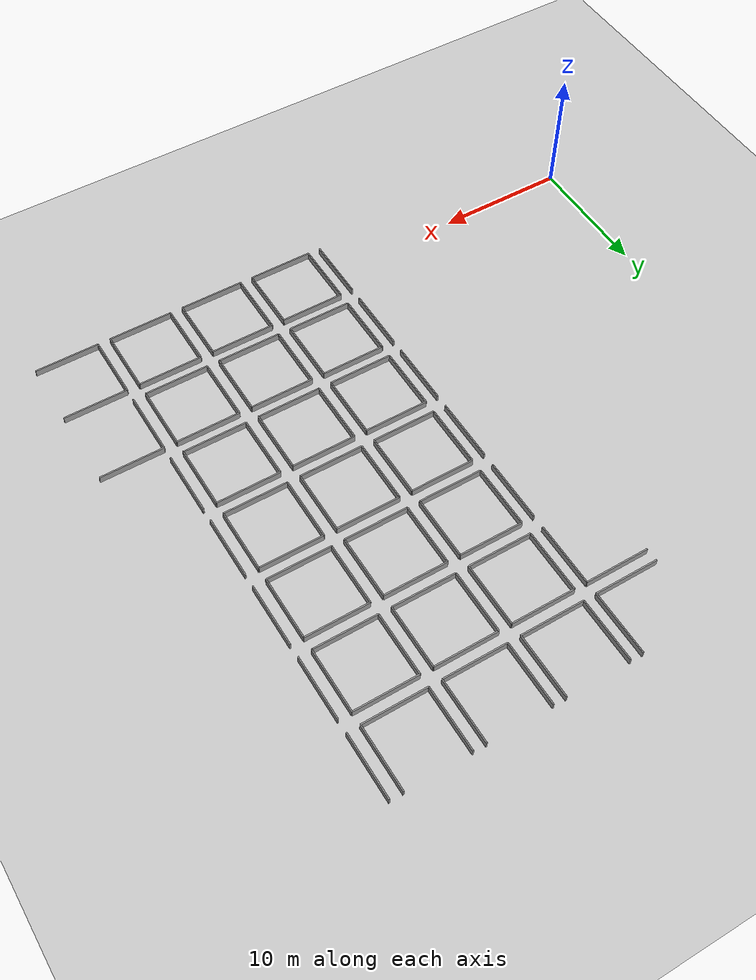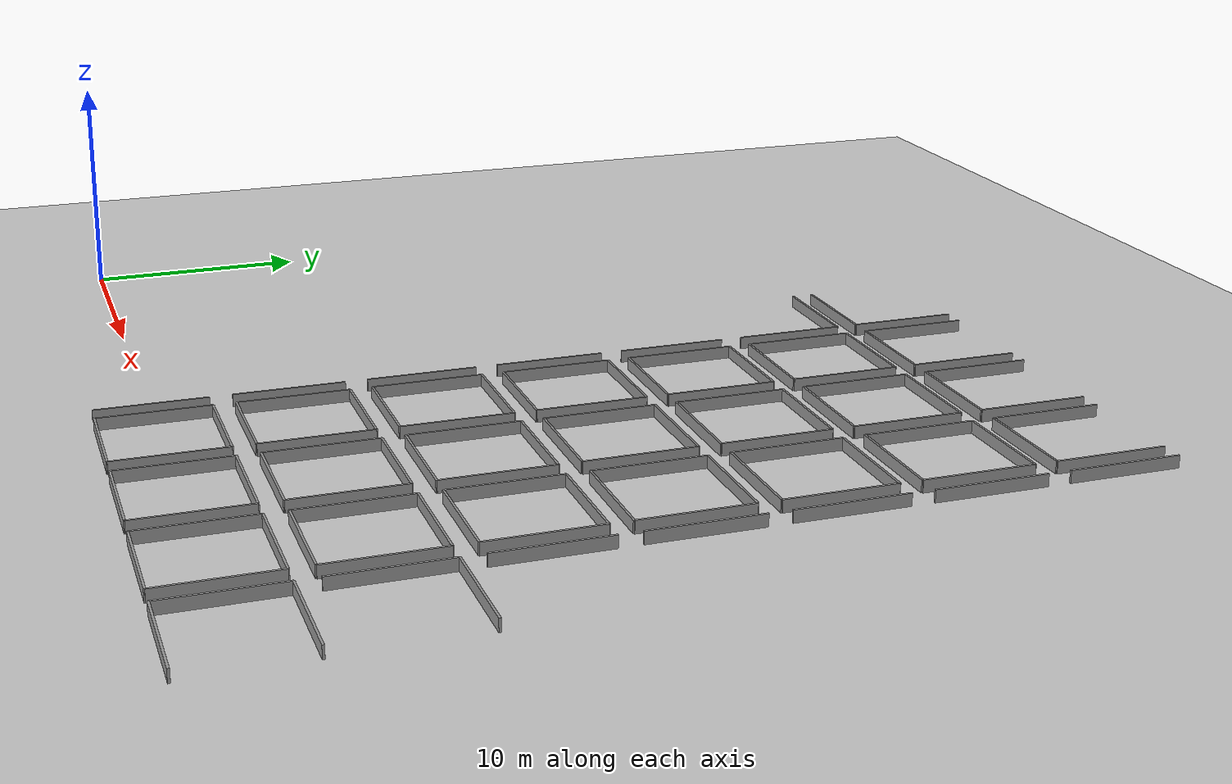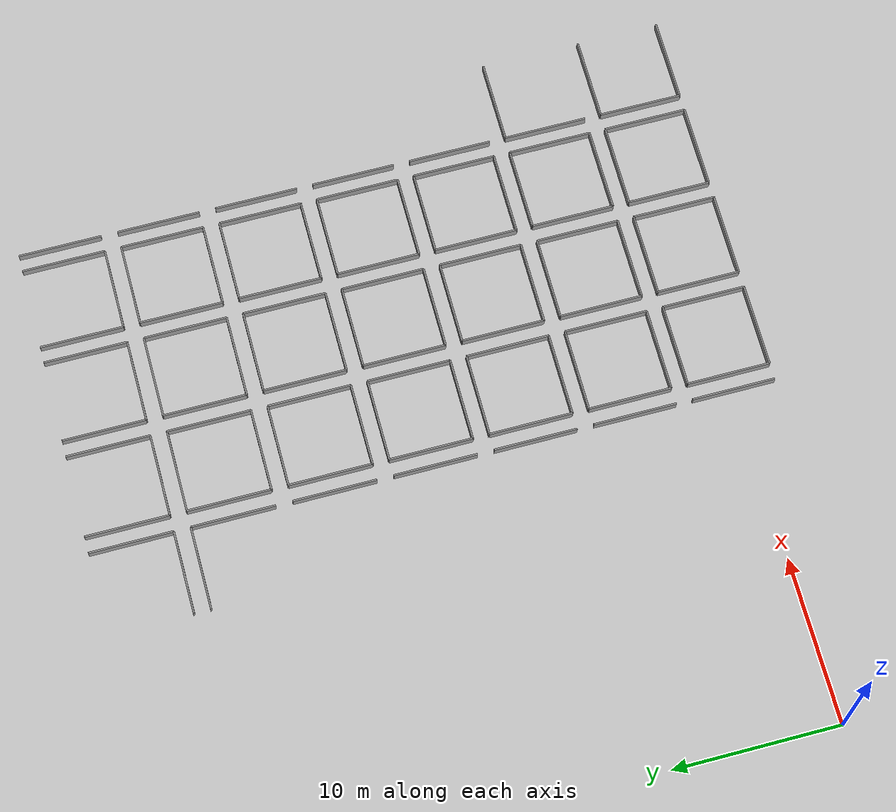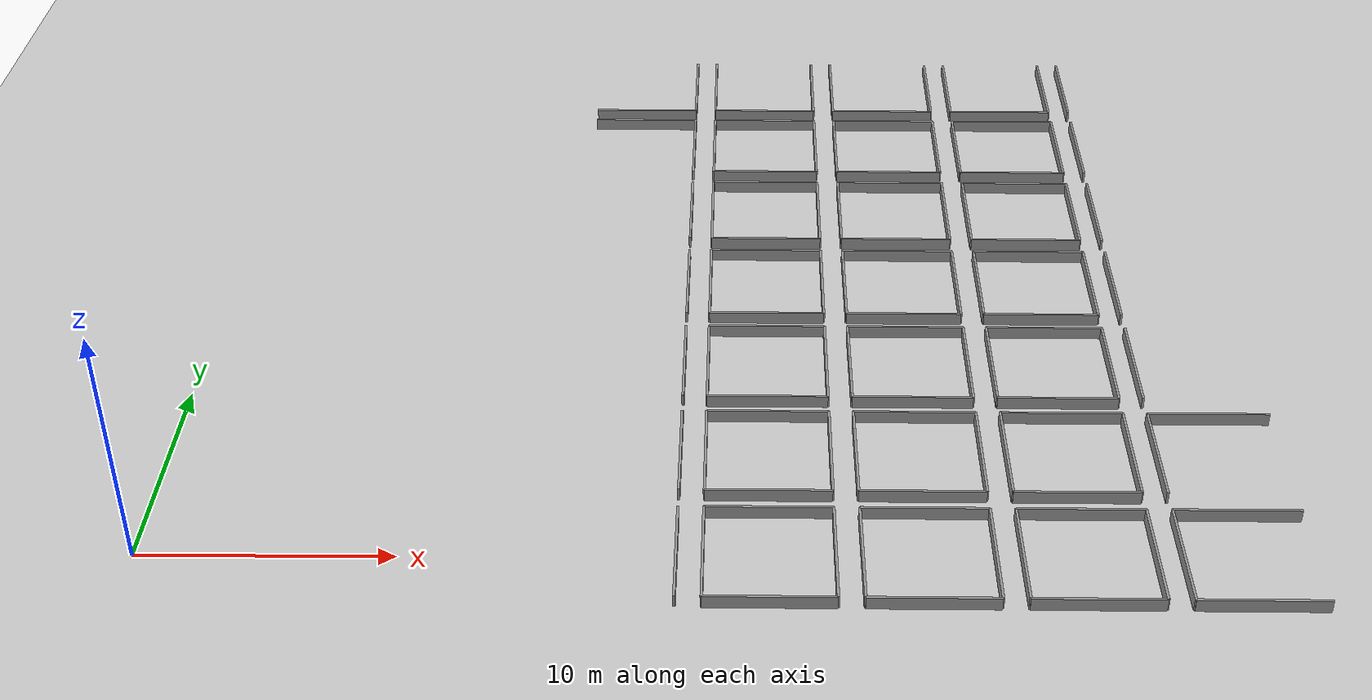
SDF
<sdf version="1.7">
 <world name="default">
  <include><uri>model://sun</uri></include>
  <model name="ground_plane">
   <static>true</static>
   <link name="link">
    <collision name="collision">
     <geometry><plane><normal>0 0 1</normal><size>100 100</size></plane></geometry>
    </collision>
    <visual name="visual">
     <geometry><plane><normal>0 0 1</normal><size>100 100</size></plane></geometry>
     <material>
      <script><uri>file://media/materials/scripts/gazebo.material</uri><name>Gazebo/Grey</name></script>
     </material>
    </visual>
   </link>
  </model>
  <model name="wall_3_east">
   <static>true</static>
   <pose>20.5 0 0 0 0 1.5707</pose>
   <link name="link">
    <collision name="collision"><geometry><box><size>5 0.1 1</size></box></geometry></collision>
    <visual name="visual">
     <geometry><box><size>5 0.1 1</size></box></geometry>
     <material>
      <script><uri>file://media/materials/scripts/gazebo.material</uri><name>Gazebo/Grey</name></script>
     </material>
    </visual>
   </link>
  </model>
  <model name="wall_4_north">
   <static>true</static>
   <pose>24 2.5 0 0 0 0</pose>
   <link name="link">
    <collision name="collision"><geometry><box><size>5 0.1 1</size></box></geometry></collision>
    <visual name="visual">
     <geometry><box><size>5 0.1 1</size></box></geometry>
     <material>
      <script><uri>file://media/materials/scripts/gazebo.material</uri><name>Gazebo/Grey</name></script>
     </material>
    </visual>
   </link>
  </model>
  <model name="wall_4_south">
   <static>true</static>
   <pose>24 -2.5 0 0 0 0</pose>
   <link name="link">
    <collision name="collision"><geometry><box><size>5 0.1 1</size></box></geometry></collision>
    <visual name="visual">
     <geometry><box><size>5 0.1 1</size></box></geometry>
     <material>
      <script><uri>file://media/materials/scripts/gazebo.material</uri><name>Gazebo/Grey</name></script>
     </material>
    </visual>
   </link>
  </model>
  <model name="wall_4_east">
   <static>true</static>
   <pose>26.5 0 0 0 0 1.5707</pose>
   <link name="link">
    <collision name="collision"><geometry><box><size>5 0.1 1</size></box></geometry></collision>
    <visual name="visual">
     <geometry><box><size>5 0.1 1</size></box></geometry>
     <material>
      <script><uri>file://media/materials/scripts/gazebo.material</uri><name>Gazebo/Grey</name></script>
     </material>
    </visual>
   </link>
  </model>
  <model name="wall_4_west">
   <static>true</static>
   <pose>21.5 0 0 0 0 1.5707</pose>
   <link name="link">
    <collision name="collision"><geometry><box><size>5 0.1 1</size></box></geometry></collision>
    <visual name="visual">
     <geometry><box><size>5 0.1 1</size></box></geometry>
     <material>
      <script><uri>file://media/materials/scripts/gazebo.material</uri><name>Gazebo/Grey</name></script>
     </material>
    </visual>
   </link>
  </model>
  <model name="wall_5_north">
   <static>true</static>
   <pose>30 2.5 0 0 0 0</pose>
   <link name="link">
    <collision name="collision"><geometry><box><size>5 0.1 1</size></box></geometry></collision>
    <visual name="visual">
     <geometry><box><size>5 0.1 1</size></box></geometry>
     <material>
      <script><uri>file://media/materials/scripts/gazebo.material</uri><name>Gazebo/Grey</name></script>
     </material>
    </visual>
   </link>
  </model>
  <model name="wall_5_south">
   <static>true</static>
   <pose>30 -2.5 0 0 0 0</pose>
   <link name="link">
    <collision name="collision"><geometry><box><size>5 0.1 1</size></box></geometry></collision>
    <visual name="visual">
     <geometry><box><size>5 0.1 1</size></box></geometry>
     <material>
      <script><uri>file://media/materials/scripts/gazebo.material</uri><name>Gazebo/Grey</name></script>
     </material>
    </visual>
   </link>
  </model>
  <model name="wall_5_east">
   <static>true</static>
   <pose>32.5 0 0 0 0 1.5707</pose>
   <link name="link">
    <collision name="collision"><geometry><box><size>5 0.1 1</size></box></geometry></collision>
    <visual name="visual">
     <geometry><box><size>5 0.1 1</size></box></geometry>
     <material>
      <script><uri>file://media/materials/scripts/gazebo.material</uri><name>Gazebo/Grey</name></script>
     </material>
    </visual>
   </link>
  </model>
  <model name="wall_5_west">
   <static>true</static>
   <pose>27.5 0 0 0 0 1.5707</pose>
   <link name="link">
    <collision name="collision"><geometry><box><size>5 0.1 1</size></box></geometry></collision>
    <visual name="visual">
     <geometry><box><size>5 0.1 1</size></box></geometry>
     <material>
      <script><uri>file://media/materials/scripts/gazebo.material</uri><name>Gazebo/Grey</name></script>
     </material>
    </visual>
   </link>
  </model>
  <model name="wall_6_north">
   <static>true</static>
   <pose>36 2.5 0 0 0 0</pose>
   <link name="link">
    <collision name="collision"><geometry><box><size>5 0.1 1</size></box></geometry></collision>
    <visual name="visual">
     <geometry><box><size>5 0.1 1</size></box></geometry>
     <material>
      <script><uri>file://media/materials/scripts/gazebo.material</uri><name>Gazebo/Grey</name></script>
     </material>
    </visual>
   </link>
  </model>
  <model name="wall_6_south">
   <static>true</static>
   <pose>36 -2.5 0 0 0 0</pose>
   <link name="link">
    <collision name="collision"><geometry><box><size>5 0.1 1</size></box></geometry></collision>
    <visual name="visual">
     <geometry><box><size>5 0.1 1</size></box></geometry>
     <material>
      <script><uri>file://media/materials/scripts/gazebo.material</uri><name>Gazebo/Grey</name></script>
     </material>
    </visual>
   </link>
  </model>
  <model name="wall_6_east">
   <static>true</static>
   <pose>38.5 0 0 0 0 1.5707</pose>
   <link name="link">
    <collision name="collision"><geometry><box><size>5 0.1 1</size></box></geometry></collision>
    <visual name="visual">
     <geometry><box><size>5 0.1 1</size></box></geometry>
     <material>
      <script><uri>file://media/materials/scripts/gazebo.material</uri><name>Gazebo/Grey</name></script>
     </material>
    </visual>
   </link>
  </model>
  <model name="wall_6_west">
   <static>true</static>
   <pose>33.5 0 0 0 0 1.5707</pose>
   <link name="link">
    <collision name="collision"><geometry><box><size>5 0.1 1</size></box></geometry></collision>
    <visual name="visual">
     <geometry><box><size>5 0.1 1</size></box></geometry>
     <material>
      <script><uri>file://media/materials/scripts/gazebo.material</uri><name>Gazebo/Grey</name></script>
     </material>
    </visual>
   </link>
  </model>
  <model name="wall_7_north">
   <static>true</static>
   <pose>42 2.5 0 0 0 0</pose>
   <link name="link">
    <collision name="collision"><geometry><box><size>5 0.1 1</size></box></geometry></collision>
    <visual name="visual">
     <geometry><box><size>5 0.1 1</size></box></geometry>
     <material>
      <script><uri>file://media/materials/scripts/gazebo.material</uri><name>Gazebo/Grey</name></script>
     </material>
    </visual>
   </link>
  </model>
  <model name="wall_7_south">
   <static>true</static>
   <pose>42 -2.5 0 0 0 0</pose>
   <link name="link">
    <collision name="collision"><geometry><box><size>5 0.1 1</size></box></geometry></collision>
    <visual name="visual">
     <geometry><box><size>5 0.1 1</size></box></geometry>
     <material>
      <script><uri>file://media/materials/scripts/gazebo.material</uri><name>Gazebo/Grey</name></script>
     </material>
    </visual>
   </link>
  </model>
  <model name="wall_7_west">
   <static>true</static>
   <pose>39.5 0 0 0 0 1.5707</pose>
   <link name="link">
    <collision name="collision"><geometry><box><size>5 0.1 1</size></box></geometry></collision>
    <visual name="visual">
     <geometry><box><size>5 0.1 1</size></box></geometry>
     <material>
      <script><uri>file://media/materials/scripts/gazebo.material</uri><name>Gazebo/Grey</name></script>
     </material>
    </visual>
   </link>
  </model>
  <model name="wall_18_east">
   <static>true</static>
   <pose>20.5 6 0 0 0 1.5707</pose>
   <link name="link">
    <collision name="collision"><geometry><box><size>5 0.1 1</size></box></geometry></collision>
    <visual name="visual">
     <geometry><box><size>5 0.1 1</size></box></geometry>
     <material>
      <script><uri>file://media/materials/scripts/gazebo.material</uri><name>Gazebo/Grey</name></script>
     </material>
    </visual>
   </link>
  </model>
  <model name="wall_19_north">
   <static>true</static>
   <pose>24 8.5 0 0 0 0</pose>
   <link name="link">
    <collision name="collision"><geometry><box><size>5 0.1 1</size></box></geometry></collision>
    <visual name="visual">
     <geometry><box><size>5 0.1 1</size></box></geometry>
     <material>
      <script><uri>file://media/materials/scripts/gazebo.material</uri><name>Gazebo/Grey</name></script>
     </material>
    </visual>
   </link>
  </model>
  <model name="wall_19_south">
   <static>true</static>
   <pose>24 3.5 0 0 0 0</pose>
   <link name="link">
    <collision name="collision"><geometry><box><size>5 0.1 1</size></box></geometry></collision>
    <visual name="visual">
     <geometry><box><size>5 0.1 1</size></box></geometry>
     <material>
      <script><uri>file://media/materials/scripts/gazebo.material</uri><name>Gazebo/Grey</name></script>
     </material>
    </visual>
   </link>
  </model>
  <model name="wall_19_east">
   <static>true</static>
   <pose>26.5 6 0 0 0 1.5707</pose>
   <link name="link">
    <collision name="collision"><geometry><box><size>5 0.1 1</size></box></geometry></collision>
    <visual name="visual">
     <geometry><box><size>5 0.1 1</size></box></geometry>
     <material>
      <script><uri>file://media/materials/scripts/gazebo.material</uri><name>Gazebo/Grey</name></script>
     </material>
    </visual>
   </link>
  </model>
  <model name="wall_19_west">
   <static>true</static>
   <pose>21.5 6 0 0 0 1.5707</pose>
   <link name="link">
    <collision name="collision"><geometry><box><size>5 0.1 1</size></box></geometry></collision>
    <visual name="visual">
     <geometry><box><size>5 0.1 1</size></box></geometry>
     <material>
      <script><uri>file://media/materials/scripts/gazebo.material</uri><name>Gazebo/Grey</name></script>
     </material>
    </visual>
   </link>
  </model>
  <model name="wall_20_north">
   <static>true</static>
   <pose>30 8.5 0 0 0 0</pose>
   <link name="link">
    <collision name="collision"><geometry><box><size>5 0.1 1</size></box></geometry></collision>
    <visual name="visual">
     <geometry><box><size>5 0.1 1</size></box></geometry>
     <material>
      <script><uri>file://media/materials/scripts/gazebo.material</uri><name>Gazebo/Grey</name></script>
     </material>
    </visual>
   </link>
  </model>
  <model name="wall_20_south">
   <static>true</static>
   <pose>30 3.5 0 0 0 0</pose>
   <link name="link">
    <collision name="collision"><geometry><box><size>5 0.1 1</size></box></geometry></collision>
    <visual name="visual">
     <geometry><box><size>5 0.1 1</size></box></geometry>
     <material>
      <script><uri>file://media/materials/scripts/gazebo.material</uri><name>Gazebo/Grey</name></script>
     </material>
    </visual>
   </link>
  </model>
  <model name="wall_20_east">
   <static>true</static>
   <pose>32.5 6 0 0 0 1.5707</pose>
   <link name="link">
    <collision name="collision"><geometry><box><size>5 0.1 1</size></box></geometry></collision>
    <visual name="visual">
     <geometry><box><size>5 0.1 1</size></box></geometry>
     <material>
      <script><uri>file://media/materials/scripts/gazebo.material</uri><name>Gazebo/Grey</name></script>
     </material>
    </visual>
   </link>
  </model>
  <model name="wall_20_west">
   <static>true</static>
   <pose>27.5 6 0 0 0 1.5707</pose>
   <link name="link">
    <collision name="collision"><geometry><box><size>5 0.1 1</size></box></geometry></collision>
    <visual name="visual">
     <geometry><box><size>5 0.1 1</size></box></geometry>
     <material>
      <script><uri>file://media/materials/scripts/gazebo.material</uri><name>Gazebo/Grey</name></script>
     </material>
    </visual>
   </link>
  </model>
  <model name="wall_21_north">
   <static>true</static>
   <pose>36 8.5 0 0 0 0</pose>
   <link name="link">
    <collision name="collision"><geometry><box><size>5 0.1 1</size></box></geometry></collision>
    <visual name="visual">
     <geometry><box><size>5 0.1 1</size></box></geometry>
     <material>
      <script><uri>file://media/materials/scripts/gazebo.material</uri><name>Gazebo/Grey</name></script>
     </material>
    </visual>
   </link>
  </model>
  <model name="wall_21_south">
   <static>true</static>
   <pose>36 3.5 0 0 0 0</pose>
   <link name="link">
    <collision name="collision"><geometry><box><size>5 0.1 1</size></box></geometry></collision>
    <visual name="visual">
     <geometry><box><size>5 0.1 1</size></box></geometry>
     <material>
      <script><uri>file://media/materials/scripts/gazebo.material</uri><name>Gazebo/Grey</name></script>
     </material>
    </visual>
   </link>
  </model>
  <model name="wall_21_east">
   <static>true</static>
   <pose>38.5 6 0 0 0 1.5707</pose>
   <link name="link">
    <collision name="collision"><geometry><box><size>5 0.1 1</size></box></geometry></collision>
    <visual name="visual">
     <geometry><box><size>5 0.1 1</size></box></geometry>
     <material>
      <script><uri>file://media/materials/scripts/gazebo.material</uri><name>Gazebo/Grey</name></script>
     </material>
    </visual>
   </link>
  </model>
  <model name="wall_21_west">
   <static>true</static>
   <pose>33.5 6 0 0 0 1.5707</pose>
   <link name="link">
    <collision name="collision"><geometry><box><size>5 0.1 1</size></box></geometry></collision>
    <visual name="visual">
     <geometry><box><size>5 0.1 1</size></box></geometry>
     <material>
      <script><uri>file://media/materials/scripts/gazebo.material</uri><name>Gazebo/Grey</name></script>
     </material>
    </visual>
   </link>
  </model>
  <model name="wall_22_north">
   <static>true</static>
   <pose>42 8.5 0 0 0 0</pose>
   <link name="link">
    <collision name="collision"><geometry><box><size>5 0.1 1</size></box></geometry></collision>
    <visual name="visual">
     <geometry><box><size>5 0.1 1</size></box></geometry>
     <material>
      <script><uri>file://media/materials/scripts/gazebo.material</uri><name>Gazebo/Grey</name></script>
     </material>
    </visual>
   </link>
  </model>
  <model name="wall_22_west">
   <static>true</static>
   <pose>39.5 6 0 0 0 1.5707</pose>
   <link name="link">
    <collision name="collision"><geometry><box><size>5 0.1 1</size></box></geometry></collision>
    <visual name="visual">
     <geometry><box><size>5 0.1 1</size></box></geometry>
     <material>
      <script><uri>file://media/materials/scripts/gazebo.material</uri><name>Gazebo/Grey</name></script>
     </material>
    </visual>
   </link>
  </model>
  <model name="wall_33_east">
   <static>true</static>
   <pose>20.5 12 0 0 0 1.5707</pose>
   <link name="link">
    <collision name="collision"><geometry><box><size>5 0.1 1</size></box></geometry></collision>
    <visual name="visual">
     <geometry><box><size>5 0.1 1</size></box></geometry>
     <material>
      <script><uri>file://media/materials/scripts/gazebo.material</uri><name>Gazebo/Grey</name></script>
     </material>
    </visual>
   </link>
  </model>
  <model name="wall_34_north">
   <static>true</static>
   <pose>24 14.5 0 0 0 0</pose>
   <link name="link">
    <collision name="collision"><geometry><box><size>5 0.1 1</size></box></geometry></collision>
    <visual name="visual">
     <geometry><box><size>5 0.1 1</size></box></geometry>
     <material>
      <script><uri>file://media/materials/scripts/gazebo.material</uri><name>Gazebo/Grey</name></script>
     </material>
    </visual>
   </link>
  </model>
  <model name="wall_34_south">
   <static>true</static>
   <pose>24 9.5 0 0 0 0</pose>
   <link name="link">
    <collision name="collision"><geometry><box><size>5 0.1 1</size></box></geometry></collision>
    <visual name="visual">
     <geometry><box><size>5 0.1 1</size></box></geometry>
     <material>
      <script><uri>file://media/materials/scripts/gazebo.material</uri><name>Gazebo/Grey</name></script>
     </material>
    </visual>
   </link>
  </model>
  <model name="wall_34_east">
   <static>true</static>
   <pose>26.5 12 0 0 0 1.5707</pose>
   <link name="link">
    <collision name="collision"><geometry><box><size>5 0.1 1</size></box></geometry></collision>
    <visual name="visual">
     <geometry><box><size>5 0.1 1</size></box></geometry>
     <material>
      <script><uri>file://media/materials/scripts/gazebo.material</uri><name>Gazebo/Grey</name></script>
     </material>
    </visual>
   </link>
  </model>
  <model name="wall_34_west">
   <static>true</static>
   <pose>21.5 12 0 0 0 1.5707</pose>
   <link name="link">
    <collision name="collision"><geometry><box><size>5 0.1 1</size></box></geometry></collision>
    <visual name="visual">
     <geometry><box><size>5 0.1 1</size></box></geometry>
     <material>
      <script><uri>file://media/materials/scripts/gazebo.material</uri><name>Gazebo/Grey</name></script>
     </material>
    </visual>
   </link>
  </model>
  <model name="wall_35_north">
   <static>true</static>
   <pose>30 14.5 0 0 0 0</pose>
   <link name="link">
    <collision name="collision"><geometry><box><size>5 0.1 1</size></box></geometry></collision>
    <visual name="visual">
     <geometry><box><size>5 0.1 1</size></box></geometry>
     <material>
      <script><uri>file://media/materials/scripts/gazebo.material</uri><name>Gazebo/Grey</name></script>
     </material>
    </visual>
   </link>
  </model>
  <model name="wall_35_south">
   <static>true</static>
   <pose>30 9.5 0 0 0 0</pose>
   <link name="link">
    <collision name="collision"><geometry><box><size>5 0.1 1</size></box></geometry></collision>
    <visual name="visual">
     <geometry><box><size>5 0.1 1</size></box></geometry>
     <material>
      <script><uri>file://media/materials/scripts/gazebo.material</uri><name>Gazebo/Grey</name></script>
     </material>
    </visual>
   </link>
  </model>
  <model name="wall_35_east">
   <static>true</static>
   <pose>32.5 12 0 0 0 1.5707</pose>
   <link name="link">
    <collision name="collision"><geometry><box><size>5 0.1 1</size></box></geometry></collision>
    <visual name="visual">
     <geometry><box><size>5 0.1 1</size></box></geometry>
     <material>
      <script><uri>file://media/materials/scripts/gazebo.material</uri><name>Gazebo/Grey</name></script>
     </material>
    </visual>
   </link>
  </model>
  <model name="wall_35_west">
   <static>true</static>
   <pose>27.5 12 0 0 0 1.5707</pose>
   <link name="link">
    <collision name="collision"><geometry><box><size>5 0.1 1</size></box></geometry></collision>
    <visual name="visual">
     <geometry><box><size>5 0.1 1</size></box></geometry>
     <material>
      <script><uri>file://media/materials/scripts/gazebo.material</uri><name>Gazebo/Grey</name></script>
     </material>
    </visual>
   </link>
  </model>
  <model name="wall_36_north">
   <static>true</static>
   <pose>36 14.5 0 0 0 0</pose>
   <link name="link">
    <collision name="collision"><geometry><box><size>5 0.1 1</size></box></geometry></collision>
    <visual name="visual">
     <geometry><box><size>5 0.1 1</size></box></geometry>
     <material>
      <script><uri>file://media/materials/scripts/gazebo.material</uri><name>Gazebo/Grey</name></script>
     </material>
    </visual>
   </link>
  </model>
  <model name="wall_36_south">
   <static>true</static>
   <pose>36 9.5 0 0 0 0</pose>
   <link name="link">
    <collision name="collision"><geometry><box><size>5 0.1 1</size></box></geometry></collision>
    <visual name="visual">
     <geometry><box><size>5 0.1 1</size></box></geometry>
     <material>
      <script><uri>file://media/materials/scripts/gazebo.material</uri><name>Gazebo/Grey</name></script>
     </material>
    </visual>
   </link>
  </model>
  <model name="wall_36_east">
   <static>true</static>
   <pose>38.5 12 0 0 0 1.5707</pose>
   <link name="link">
    <collision name="collision"><geometry><box><size>5 0.1 1</size></box></geometry></collision>
    <visual name="visual">
     <geometry><box><size>5 0.1 1</size></box></geometry>
     <material>
      <script><uri>file://media/materials/scripts/gazebo.material</uri><name>Gazebo/Grey</name></script>
     </material>
    </visual>
   </link>
  </model>
  <model name="wall_36_west">
   <static>true</static>
   <pose>33.5 12 0 0 0 1.5707</pose>
   <link name="link">
    <collision name="collision"><geometry><box><size>5 0.1 1</size></box></geometry></collision>
    <visual name="visual">
     <geometry><box><size>5 0.1 1</size></box></geometry>
     <material>
      <script><uri>file://media/materials/scripts/gazebo.material</uri><name>Gazebo/Grey</name></script>
     </material>
    </visual>
   </link>
  </model>
  <model name="wall_37_west">
   <static>true</static>
   <pose>39.5 12 0 0 0 1.5707</pose>
   <link name="link">
    <collision name="collision"><geometry><box><size>5 0.1 1</size></box></geometry></collision>
    <visual name="visual">
     <geometry><box><size>5 0.1 1</size></box></geometry>
     <material>
      <script><uri>file://media/materials/scripts/gazebo.material</uri><name>Gazebo/Grey</name></script>
     </material>
    </visual>
   </link>
  </model>
  <model name="wall_48_east">
   <static>true</static>
   <pose>20.5 18 0 0 0 1.5707</pose>
   <link name="link">
    <collision name="collision"><geometry><box><size>5 0.1 1</size></box></geometry></collision>
    <visual name="visual">
     <geometry><box><size>5 0.1 1</size></box></geometry>
     <material>
      <script><uri>file://media/materials/scripts/gazebo.material</uri><name>Gazebo/Grey</name></script>
     </material>
    </visual>
   </link>
  </model>
  <model name="wall_49_north">
   <static>true</static>
   <pose>24 20.5 0 0 0 0</pose>
   <link name="link">
    <collision name="collision"><geometry><box><size>5 0.1 1</size></box></geometry></collision>
    <visual name="visual">
     <geometry><box><size>5 0.1 1</size></box></geometry>
     <material>
      <script><uri>file://media/materials/scripts/gazebo.material</uri><name>Gazebo/Grey</name></script>
     </material>
    </visual>
   </link>
  </model>
  <model name="wall_49_south">
   <static>true</static>
   <pose>24 15.5 0 0 0 0</pose>
   <link name="link">
    <collision name="collision"><geometry><box><size>5 0.1 1</size></box></geometry></collision>
    <visual name="visual">
     <geometry><box><size>5 0.1 1</size></box></geometry>
     <material>
      <script><uri>file://media/materials/scripts/gazebo.material</uri><name>Gazebo/Grey</name></script>
     </material>
    </visual>
   </link>
  </model>
  <model name="wall_49_east">
   <static>true</static>
   <pose>26.5 18 0 0 0 1.5707</pose>
   <link name="link">
    <collision name="collision"><geometry><box><size>5 0.1 1</size></box></geometry></collision>
    <visual name="visual">
     <geometry><box><size>5 0.1 1</size></box></geometry>
     <material>
      <script><uri>file://media/materials/scripts/gazebo.material</uri><name>Gazebo/Grey</name></script>
     </material>
    </visual>
   </link>
  </model>
  <model name="wall_49_west">
   <static>true</static>
   <pose>21.5 18 0 0 0 1.5707</pose>
   <link name="link">
    <collision name="collision"><geometry><box><size>5 0.1 1</size></box></geometry></collision>
    <visual name="visual">
     <geometry><box><size>5 0.1 1</size></box></geometry>
     <material>
      <script><uri>file://media/materials/scripts/gazebo.material</uri><name>Gazebo/Grey</name></script>
     </material>
    </visual>
   </link>
  </model>
  <model name="wall_50_north">
   <static>true</static>
   <pose>30 20.5 0 0 0 0</pose>
   <link name="link">
    <collision name="collision"><geometry><box><size>5 0.1 1</size></box></geometry></collision>
    <visual name="visual">
     <geometry><box><size>5 0.1 1</size></box></geometry>
     <material>
      <script><uri>file://media/materials/scripts/gazebo.material</uri><name>Gazebo/Grey</name></script>
     </material>
    </visual>
   </link>
  </model>
  <model name="wall_50_south">
   <static>true</static>
   <pose>30 15.5 0 0 0 0</pose>
   <link name="link">
    <collision name="collision"><geometry><box><size>5 0.1 1</size></box></geometry></collision>
    <visual name="visual">
     <geometry><box><size>5 0.1 1</size></box></geometry>
     <material>
      <script><uri>file://media/materials/scripts/gazebo.material</uri><name>Gazebo/Grey</name></script>
     </material>
    </visual>
   </link>
  </model>
  <model name="wall_50_east">
   <static>true</static>
   <pose>32.5 18 0 0 0 1.5707</pose>
   <link name="link">
    <collision name="collision"><geometry><box><size>5 0.1 1</size></box></geometry></collision>
    <visual name="visual">
     <geometry><box><size>5 0.1 1</size></box></geometry>
     <material>
      <script><uri>file://media/materials/scripts/gazebo.material</uri><name>Gazebo/Grey</name></script>
     </material>
    </visual>
   </link>
  </model>
  <model name="wall_50_west">
   <static>true</static>
   <pose>27.5 18 0 0 0 1.5707</pose>
   <link name="link">
    <collision name="collision"><geometry><box><size>5 0.1 1</size></box></geometry></collision>
    <visual name="visual">
     <geometry><box><size>5 0.1 1</size></box></geometry>
     <material>
      <script><uri>file://media/materials/scripts/gazebo.material</uri><name>Gazebo/Grey</name></script>
     </material>
    </visual>
   </link>
  </model>
  <model name="wall_51_north">
   <static>true</static>
   <pose>36 20.5 0 0 0 0</pose>
   <link name="link">
    <collision name="collision"><geometry><box><size>5 0.1 1</size></box></geometry></collision>
    <visual name="visual">
     <geometry><box><size>5 0.1 1</size></box></geometry>
     <material>
      <script><uri>file://media/materials/scripts/gazebo.material</uri><name>Gazebo/Grey</name></script>
     </material>
    </visual>
   </link>
  </model>
  <model name="wall_51_south">
   <static>true</static>
   <pose>36 15.5 0 0 0 0</pose>
   <link name="link">
    <collision name="collision"><geometry><box><size>5 0.1 1</size></box></geometry></collision>
    <visual name="visual">
     <geometry><box><size>5 0.1 1</size></box></geometry>
     <material>
      <script><uri>file://media/materials/scripts/gazebo.material</uri><name>Gazebo/Grey</name></script>
     </material>
    </visual>
   </link>
  </model>
  <model name="wall_51_east">
   <static>true</static>
   <pose>38.5 18 0 0 0 1.5707</pose>
   <link name="link">
    <collision name="collision"><geometry><box><size>5 0.1 1</size></box></geometry></collision>
    <visual name="visual">
     <geometry><box><size>5 0.1 1</size></box></geometry>
     <material>
      <script><uri>file://media/materials/scripts/gazebo.material</uri><name>Gazebo/Grey</name></script>
     </material>
    </visual>
   </link>
  </model>
  <model name="wall_51_west">
   <static>true</static>
   <pose>33.5 18 0 0 0 1.5707</pose>
   <link name="link">
    <collision name="collision"><geometry><box><size>5 0.1 1</size></box></geometry></collision>
    <visual name="visual">
     <geometry><box><size>5 0.1 1</size></box></geometry>
     <material>
      <script><uri>file://media/materials/scripts/gazebo.material</uri><name>Gazebo/Grey</name></script>
     </material>
    </visual>
   </link>
  </model>
  <model name="wall_52_west">
   <static>true</static>
   <pose>39.5 18 0 0 0 1.5707</pose>
   <link name="link">
    <collision name="collision"><geometry><box><size>5 0.1 1</size></box></geometry></collision>
    <visual name="visual">
     <geometry><box><size>5 0.1 1</size></box></geometry>
     <material>
      <script><uri>file://media/materials/scripts/gazebo.material</uri><name>Gazebo/Grey</name></script>
     </material>
    </visual>
   </link>
  </model>
  <model name="wall_63_east">
   <static>true</static>
   <pose>20.5 24 0 0 0 1.5707</pose>
   <link name="link">
    <collision name="collision"><geometry><box><size>5 0.1 1</size></box></geometry></collision>
    <visual name="visual">
     <geometry><box><size>5 0.1 1</size></box></geometry>
     <material>
      <script><uri>file://media/materials/scripts/gazebo.material</uri><name>Gazebo/Grey</name></script>
     </material>
    </visual>
   </link>
  </model>
  <model name="wall_64_north">
   <static>true</static>
   <pose>24 26.5 0 0 0 0</pose>
   <link name="link">
    <collision name="collision"><geometry><box><size>5 0.1 1</size></box></geometry></collision>
    <visual name="visual">
     <geometry><box><size>5 0.1 1</size></box></geometry>
     <material>
      <script><uri>file://media/materials/scripts/gazebo.material</uri><name>Gazebo/Grey</name></script>
     </material>
    </visual>
   </link>
  </model>
  <model name="wall_64_south">
   <static>true</static>
   <pose>24 21.5 0 0 0 0</pose>
   <link name="link">
    <collision name="collision"><geometry><box><size>5 0.1 1</size></box></geometry></collision>
    <visual name="visual">
     <geometry><box><size>5 0.1 1</size></box></geometry>
     <material>
      <script><uri>file://media/materials/scripts/gazebo.material</uri><name>Gazebo/Grey</name></script>
     </material>
    </visual>
   </link>
  </model>
  <model name="wall_64_east">
   <static>true</static>
   <pose>26.5 24 0 0 0 1.5707</pose>
   <link name="link">
    <collision name="collision"><geometry><box><size>5 0.1 1</size></box></geometry></collision>
    <visual name="visual">
     <geometry><box><size>5 0.1 1</size></box></geometry>
     <material>
      <script><uri>file://media/materials/scripts/gazebo.material</uri><name>Gazebo/Grey</name></script>
     </material>
    </visual>
   </link>
  </model>
  <model name="wall_64_west">
   <static>true</static>
   <pose>21.5 24 0 0 0 1.5707</pose>
   <link name="link">
    <collision name="collision"><geometry><box><size>5 0.1 1</size></box></geometry></collision>
    <visual name="visual">
     <geometry><box><size>5 0.1 1</size></box></geometry>
     <material>
      <script><uri>file://media/materials/scripts/gazebo.material</uri><name>Gazebo/Grey</name></script>
     </material>
    </visual>
   </link>
  </model>
  <model name="wall_65_north">
   <static>true</static>
   <pose>30 26.5 0 0 0 0</pose>
   <link name="link">
    <collision name="collision"><geometry><box><size>5 0.1 1</size></box></geometry></collision>
    <visual name="visual">
     <geometry><box><size>5 0.1 1</size></box></geometry>
     <material>
      <script><uri>file://media/materials/scripts/gazebo.material</uri><name>Gazebo/Grey</name></script>
     </material>
    </visual>
   </link>
  </model>
  <model name="wall_65_south">
   <static>true</static>
   <pose>30 21.5 0 0 0 0</pose>
   <link name="link">
    <collision name="collision"><geometry><box><size>5 0.1 1</size></box></geometry></collision>
    <visual name="visual">
     <geometry><box><size>5 0.1 1</size></box></geometry>
     <material>
      <script><uri>file://media/materials/scripts/gazebo.material</uri><name>Gazebo/Grey</name></script>
     </material>
    </visual>
   </link>
  </model>
  <model name="wall_65_east">
   <static>true</static>
   <pose>32.5 24 0 0 0 1.5707</pose>
   <link name="link">
    <collision name="collision"><geometry><box><size>5 0.1 1</size></box></geometry></collision>
    <visual name="visual">
     <geometry><box><size>5 0.1 1</size></box></geometry>
     <material>
      <script><uri>file://media/materials/scripts/gazebo.material</uri><name>Gazebo/Grey</name></script>
     </material>
    </visual>
   </link>
  </model>
  <model name="wall_65_west">
   <static>true</static>
   <pose>27.5 24 0 0 0 1.5707</pose>
   <link name="link">
    <collision name="collision"><geometry><box><size>5 0.1 1</size></box></geometry></collision>
    <visual name="visual">
     <geometry><box><size>5 0.1 1</size></box></geometry>
     <material>
      <script><uri>file://media/materials/scripts/gazebo.material</uri><name>Gazebo/Grey</name></script>
     </material>
    </visual>
   </link>
  </model>
  <model name="wall_66_north">
   <static>true</static>
   <pose>36 26.5 0 0 0 0</pose>
   <link name="link">
    <collision name="collision"><geometry><box><size>5 0.1 1</size></box></geometry></collision>
    <visual name="visual">
     <geometry><box><size>5 0.1 1</size></box></geometry>
     <material>
      <script><uri>file://media/materials/scripts/gazebo.material</uri><name>Gazebo/Grey</name></script>
     </material>
    </visual>
   </link>
  </model>
  <model name="wall_66_south">
   <static>true</static>
   <pose>36 21.5 0 0 0 0</pose>
   <link name="link">
    <collision name="collision"><geometry><box><size>5 0.1 1</size></box></geometry></collision>
    <visual name="visual">
     <geometry><box><size>5 0.1 1</size></box></geometry>
     <material>
      <script><uri>file://media/materials/scripts/gazebo.material</uri><name>Gazebo/Grey</name></script>
     </material>
    </visual>
   </link>
  </model>
  <model name="wall_66_east">
   <static>true</static>
   <pose>38.5 24 0 0 0 1.5707</pose>
   <link name="link">
    <collision name="collision"><geometry><box><size>5 0.1 1</size></box></geometry></collision>
    <visual name="visual">
     <geometry><box><size>5 0.1 1</size></box></geometry>
     <material>
      <script><uri>file://media/materials/scripts/gazebo.material</uri><name>Gazebo/Grey</name></script>
     </material>
    </visual>
   </link>
  </model>
  <model name="wall_66_west">
   <static>true</static>
   <pose>33.5 24 0 0 0 1.5707</pose>
   <link name="link">
    <collision name="collision"><geometry><box><size>5 0.1 1</size></box></geometry></collision>
    <visual name="visual">
     <geometry><box><size>5 0.1 1</size></box></geometry>
     <material>
      <script><uri>file://media/materials/scripts/gazebo.material</uri><name>Gazebo/Grey</name></script>
     </material>
    </visual>
   </link>
  </model>
  <model name="wall_67_west">
   <static>true</static>
   <pose>39.5 24 0 0 0 1.5707</pose>
   <link name="link">
    <collision name="collision"><geometry><box><size>5 0.1 1</size></box></geometry></collision>
    <visual name="visual">
     <geometry><box><size>5 0.1 1</size></box></geometry>
     <material>
      <script><uri>file://media/materials/scripts/gazebo.material</uri><name>Gazebo/Grey</name></script>
     </material>
    </visual>
   </link>
  </model>
  <model name="wall_78_north">
   <static>true</static>
   <pose>18 32.5 0 0 0 0</pose>
   <link name="link">
    <collision name="collision"><geometry><box><size>5 0.1 1</size></box></geometry></collision>
    <visual name="visual">
     <geometry><box><size>5 0.1 1</size></box></geometry>
     <material>
      <script><uri>file://media/materials/scripts/gazebo.material</uri><name>Gazebo/Grey</name></script>
     </material>
    </visual>
   </link>
  </model>
  <model name="wall_78_east">
   <static>true</static>
   <pose>20.5 30 0 0 0 1.5707</pose>
   <link name="link">
    <collision name="collision"><geometry><box><size>5 0.1 1</size></box></geometry></collision>
    <visual name="visual">
     <geometry><box><size>5 0.1 1</size></box></geometry>
     <material>
      <script><uri>file://media/materials/scripts/gazebo.material</uri><name>Gazebo/Grey</name></script>
     </material>
    </visual>
   </link>
  </model>
  <model name="wall_79_north">
   <static>true</static>
   <pose>24 32.5 0 0 0 0</pose>
   <link name="link">
    <collision name="collision"><geometry><box><size>5 0.1 1</size></box></geometry></collision>
    <visual name="visual">
     <geometry><box><size>5 0.1 1</size></box></geometry>
     <material>
      <script><uri>file://media/materials/scripts/gazebo.material</uri><name>Gazebo/Grey</name></script>
     </material>
    </visual>
   </link>
  </model>
  <model name="wall_79_south">
   <static>true</static>
   <pose>24 27.5 0 0 0 0</pose>
   <link name="link">
    <collision name="collision"><geometry><box><size>5 0.1 1</size></box></geometry></collision>
    <visual name="visual">
     <geometry><box><size>5 0.1 1</size></box></geometry>
     <material>
      <script><uri>file://media/materials/scripts/gazebo.material</uri><name>Gazebo/Grey</name></script>
     </material>
    </visual>
   </link>
  </model>
  <model name="wall_79_east">
   <static>true</static>
   <pose>26.5 30 0 0 0 1.5707</pose>
   <link name="link">
    <collision name="collision"><geometry><box><size>5 0.1 1</size></box></geometry></collision>
    <visual name="visual">
     <geometry><box><size>5 0.1 1</size></box></geometry>
     <material>
      <script><uri>file://media/materials/scripts/gazebo.material</uri><name>Gazebo/Grey</name></script>
     </material>
    </visual>
   </link>
  </model>
  <model name="wall_79_west">
   <static>true</static>
   <pose>21.5 30 0 0 0 1.5707</pose>
   <link name="link">
    <collision name="collision"><geometry><box><size>5 0.1 1</size></box></geometry></collision>
    <visual name="visual">
     <geometry><box><size>5 0.1 1</size></box></geometry>
     <material>
      <script><uri>file://media/materials/scripts/gazebo.material</uri><name>Gazebo/Grey</name></script>
     </material>
    </visual>
   </link>
  </model>
  <model name="wall_80_north">
   <static>true</static>
   <pose>30 32.5 0 0 0 0</pose>
   <link name="link">
    <collision name="collision"><geometry><box><size>5 0.1 1</size></box></geometry></collision>
    <visual name="visual">
     <geometry><box><size>5 0.1 1</size></box></geometry>
     <material>
      <script><uri>file://media/materials/scripts/gazebo.material</uri><name>Gazebo/Grey</name></script>
     </material>
    </visual>
   </link>
  </model>
  <model name="wall_80_south">
   <static>true</static>
   <pose>30 27.5 0 0 0 0</pose>
   <link name="link">
    <collision name="collision"><geometry><box><size>5 0.1 1</size></box></geometry></collision>
    <visual name="visual">
     <geometry><box><size>5 0.1 1</size></box></geometry>
     <material>
      <script><uri>file://media/materials/scripts/gazebo.material</uri><name>Gazebo/Grey</name></script>
     </material>
    </visual>
   </link>
  </model>
  <model name="wall_80_east">
   <static>true</static>
   <pose>32.5 30 0 0 0 1.5707</pose>
   <link name="link">
    <collision name="collision"><geometry><box><size>5 0.1 1</size></box></geometry></collision>
    <visual name="visual">
     <geometry><box><size>5 0.1 1</size></box></geometry>
     <material>
      <script><uri>file://media/materials/scripts/gazebo.material</uri><name>Gazebo/Grey</name></script>
     </material>
    </visual>
   </link>
  </model>
  <model name="wall_80_west">
   <static>true</static>
   <pose>27.5 30 0 0 0 1.5707</pose>
   <link name="link">
    <collision name="collision"><geometry><box><size>5 0.1 1</size></box></geometry></collision>
    <visual name="visual">
     <geometry><box><size>5 0.1 1</size></box></geometry>
     <material>
      <script><uri>file://media/materials/scripts/gazebo.material</uri><name>Gazebo/Grey</name></script>
     </material>
    </visual>
   </link>
  </model>
  <model name="wall_81_north">
   <static>true</static>
   <pose>36 32.5 0 0 0 0</pose>
   <link name="link">
    <collision name="collision"><geometry><box><size>5 0.1 1</size></box></geometry></collision>
    <visual name="visual">
     <geometry><box><size>5 0.1 1</size></box></geometry>
     <material>
      <script><uri>file://media/materials/scripts/gazebo.material</uri><name>Gazebo/Grey</name></script>
     </material>
    </visual>
   </link>
  </model>
  <model name="wall_81_south">
   <static>true</static>
   <pose>36 27.5 0 0 0 0</pose>
   <link name="link">
    <collision name="collision"><geometry><box><size>5 0.1 1</size></box></geometry></collision>
    <visual name="visual">
     <geometry><box><size>5 0.1 1</size></box></geometry>
     <material>
      <script><uri>file://media/materials/scripts/gazebo.material</uri><name>Gazebo/Grey</name></script>
     </material>
    </visual>
   </link>
  </model>
  <model name="wall_81_east">
   <static>true</static>
   <pose>38.5 30 0 0 0 1.5707</pose>
   <link name="link">
    <collision name="collision"><geometry><box><size>5 0.1 1</size></box></geometry></collision>
    <visual name="visual">
     <geometry><box><size>5 0.1 1</size></box></geometry>
     <material>
      <script><uri>file://media/materials/scripts/gazebo.material</uri><name>Gazebo/Grey</name></script>
     </material>
    </visual>
   </link>
  </model>
  <model name="wall_81_west">
   <static>true</static>
   <pose>33.5 30 0 0 0 1.5707</pose>
   <link name="link">
    <collision name="collision"><geometry><box><size>5 0.1 1</size></box></geometry></collision>
    <visual name="visual">
     <geometry><box><size>5 0.1 1</size></box></geometry>
     <material>
      <script><uri>file://media/materials/scripts/gazebo.material</uri><name>Gazebo/Grey</name></script>
     </material>
    </visual>
   </link>
  </model>
  <model name="wall_82_west">
   <static>true</static>
   <pose>39.5 30 0 0 0 1.5707</pose>
   <link name="link">
    <collision name="collision"><geometry><box><size>5 0.1 1</size></box></geometry></collision>
    <visual name="visual">
     <geometry><box><size>5 0.1 1</size></box></geometry>
     <material>
      <script><uri>file://media/materials/scripts/gazebo.material</uri><name>Gazebo/Grey</name></script>
     </material>
    </visual>
   </link>
  </model>
  <model name="wall_93_south">
   <static>true</static>
   <pose>18 33.5 0 0 0 0</pose>
   <link name="link">
    <collision name="collision"><geometry><box><size>5 0.1 1</size></box></geometry></collision>
    <visual name="visual">
     <geometry><box><size>5 0.1 1</size></box></geometry>
     <material>
      <script><uri>file://media/materials/scripts/gazebo.material</uri><name>Gazebo/Grey</name></script>
     </material>
    </visual>
   </link>
  </model>
  <model name="wall_93_east">
   <static>true</static>
   <pose>20.5 36 0 0 0 1.5707</pose>
   <link name="link">
    <collision name="collision"><geometry><box><size>5 0.1 1</size></box></geometry></collision>
    <visual name="visual">
     <geometry><box><size>5 0.1 1</size></box></geometry>
     <material>
      <script><uri>file://media/materials/scripts/gazebo.material</uri><name>Gazebo/Grey</name></script>
     </material>
    </visual>
   </link>
  </model>
  <model name="wall_94_south">
   <static>true</static>
   <pose>24 33.5 0 0 0 0</pose>
   <link name="link">
    <collision name="collision"><geometry><box><size>5 0.1 1</size></box></geometry></collision>
    <visual name="visual">
     <geometry><box><size>5 0.1 1</size></box></geometry>
     <material>
      <script><uri>file://media/materials/scripts/gazebo.material</uri><name>Gazebo/Grey</name></script>
     </material>
    </visual>
   </link>
  </model>
  <model name="wall_94_east">
   <static>true</static>
   <pose>26.5 36 0 0 0 1.5707</pose>
   <link name="link">
    <collision name="collision"><geometry><box><size>5 0.1 1</size></box></geometry></collision>
    <visual name="visual">
     <geometry><box><size>5 0.1 1</size></box></geometry>
     <material>
      <script><uri>file://media/materials/scripts/gazebo.material</uri><name>Gazebo/Grey</name></script>
     </material>
    </visual>
   </link>
  </model>
  <model name="wall_94_west">
   <static>true</static>
   <pose>21.5 36 0 0 0 1.5707</pose>
   <link name="link">
    <collision name="collision"><geometry><box><size>5 0.1 1</size></box></geometry></collision>
    <visual name="visual">
     <geometry><box><size>5 0.1 1</size></box></geometry>
     <material>
      <script><uri>file://media/materials/scripts/gazebo.material</uri><name>Gazebo/Grey</name></script>
     </material>
    </visual>
   </link>
  </model>
  <model name="wall_95_south">
   <static>true</static>
   <pose>30 33.5 0 0 0 0</pose>
   <link name="link">
    <collision name="collision"><geometry><box><size>5 0.1 1</size></box></geometry></collision>
    <visual name="visual">
     <geometry><box><size>5 0.1 1</size></box></geometry>
     <material>
      <script><uri>file://media/materials/scripts/gazebo.material</uri><name>Gazebo/Grey</name></script>
     </material>
    </visual>
   </link>
  </model>
  <model name="wall_95_east">
   <static>true</static>
   <pose>32.5 36 0 0 0 1.5707</pose>
   <link name="link">
    <collision name="collision"><geometry><box><size>5 0.1 1</size></box></geometry></collision>
    <visual name="visual">
     <geometry><box><size>5 0.1 1</size></box></geometry>
     <material>
      <script><uri>file://media/materials/scripts/gazebo.material</uri><name>Gazebo/Grey</name></script>
     </material>
    </visual>
   </link>
  </model>
  <model name="wall_95_west">
   <static>true</static>
   <pose>27.5 36 0 0 0 1.5707</pose>
   <link name="link">
    <collision name="collision"><geometry><box><size>5 0.1 1</size></box></geometry></collision>
    <visual name="visual">
     <geometry><box><size>5 0.1 1</size></box></geometry>
     <material>
      <script><uri>file://media/materials/scripts/gazebo.material</uri><name>Gazebo/Grey</name></script>
     </material>
    </visual>
   </link>
  </model>
  <model name="wall_96_south">
   <static>true</static>
   <pose>36 33.5 0 0 0 0</pose>
   <link name="link">
    <collision name="collision"><geometry><box><size>5 0.1 1</size></box></geometry></collision>
    <visual name="visual">
     <geometry><box><size>5 0.1 1</size></box></geometry>
     <material>
      <script><uri>file://media/materials/scripts/gazebo.material</uri><name>Gazebo/Grey</name></script>
     </material>
    </visual>
   </link>
  </model>
  <model name="wall_96_east">
   <static>true</static>
   <pose>38.5 36 0 0 0 1.5707</pose>
   <link name="link">
    <collision name="collision"><geometry><box><size>5 0.1 1</size></box></geometry></collision>
    <visual name="visual">
     <geometry><box><size>5 0.1 1</size></box></geometry>
     <material>
      <script><uri>file://media/materials/scripts/gazebo.material</uri><name>Gazebo/Grey</name></script>
     </material>
    </visual>
   </link>
  </model>
  <model name="wall_96_west">
   <static>true</static>
   <pose>33.5 36 0 0 0 1.5707</pose>
   <link name="link">
    <collision name="collision"><geometry><box><size>5 0.1 1</size></box></geometry></collision>
    <visual name="visual">
     <geometry><box><size>5 0.1 1</size></box></geometry>
     <material>
      <script><uri>file://media/materials/scripts/gazebo.material</uri><name>Gazebo/Grey</name></script>
     </material>
    </visual>
   </link>
  </model>
  <model name="wall_97_west">
   <static>true</static>
   <pose>39.5 36 0 0 0 1.5707</pose>
   <link name="link">
    <collision name="collision"><geometry><box><size>5 0.1 1</size></box></geometry></collision>
    <visual name="visual">
     <geometry><box><size>5 0.1 1</size></box></geometry>
     <material>
      <script><uri>file://media/materials/scripts/gazebo.material</uri><name>Gazebo/Grey</name></script>
     </material>
    </visual>
   </link>
  </model>
 </world>
</sdf>
